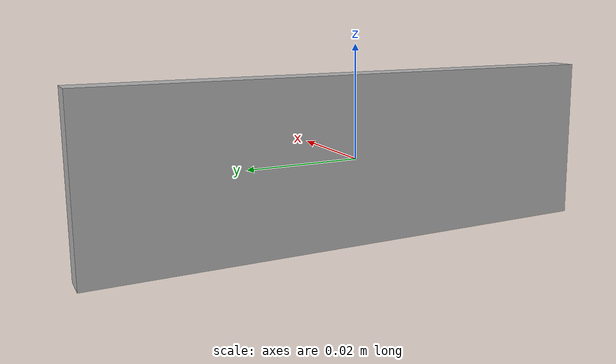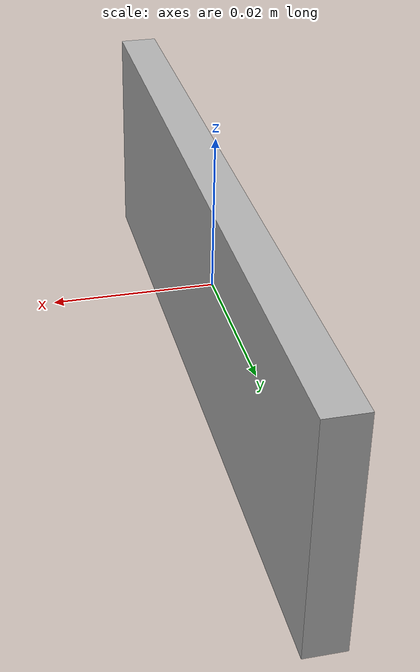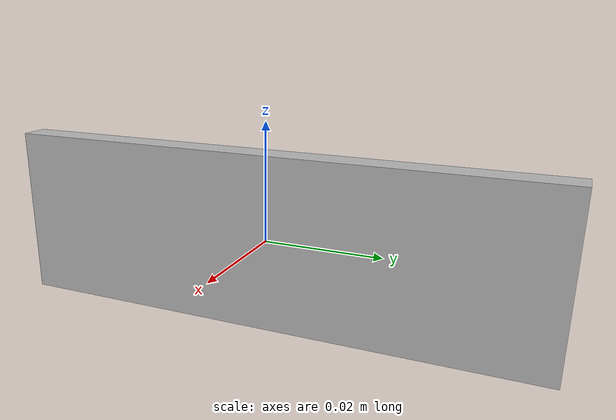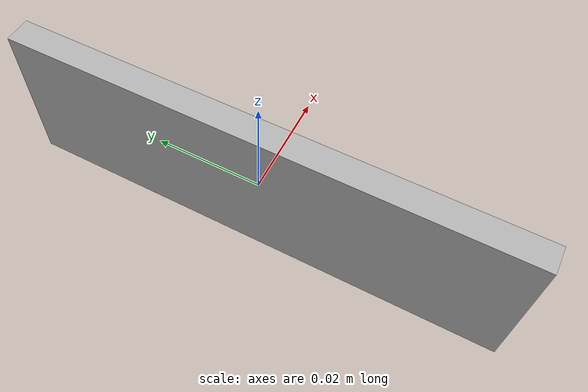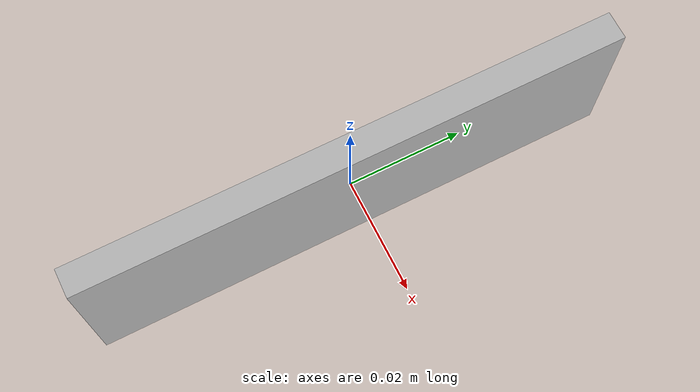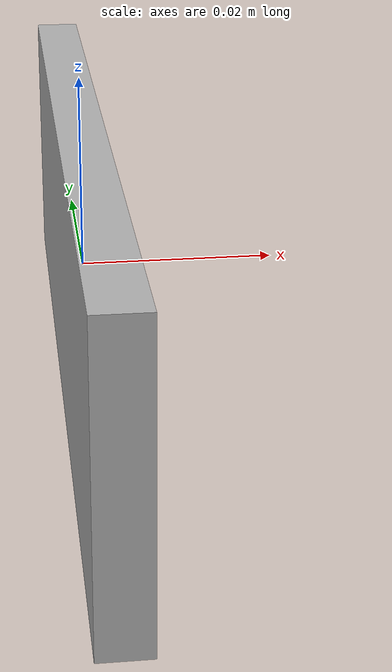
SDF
<?xml version='1.0'?>

<sdf version='1.9'>
  <model name='camera'>
    <link name='link_camera'>
      <inertial>
        <mass>0.0052875</mass>
        <inertia>
          <ixx>4.1e-07</ixx>
          <ixy>0</ixy>
          <ixz>0</ixz>
          <iyy>7.9e-07</iyy>
          <iyz>0</iyz>
          <izz>4.1e-07</izz>
        </inertia>
        <pose>0 0 0 0 0 0</pose>
      </inertial>
      <pose>0 0 0 0 0 0</pose>
      <gravity>1</gravity>
      <self_collide>0</self_collide>
      <kinematic>0</kinematic>
      <enable_wind>0</enable_wind>

      <visual name='visual'>
        <pose>0 0 0 0 0 0</pose>
        <geometry>
          <box><size>0.005 0.095 0.03</size></box>
        </geometry>
        <material>
          <ambient>0.3 0.3 0.3 1</ambient>
          <diffuse>0.7 0.7 0.7 1</diffuse>
          <specular>0.01 0.01 0.01 1</specular>
          <emissive>0 0 0 1</emissive>
        </material>
      </visual>

      <collision name='collision'>
        <pose>0 0 0 0 0 0</pose>
        <geometry>
          <box><size>0.005 0.095 0.03</size></box>
        </geometry>
      </collision>

      <!-- ===== RGB Camera originale (backward compatibility) ===== -->
      <sensor type="camera" name="camera1">
        <always_on>1</always_on>
        <update_rate>30.0</update_rate>
        <camera name="head">
          <horizontal_fov>1.085594795</horizontal_fov>
          <image>
            <width>640</width>
            <height>480</height>
            <format>R8G8B8</format>
          </image>
          <clip><near>0.02</near><far>100</far></clip>
          <noise><type>gaussian</type><mean>0.0</mean><stddev>0.0</stddev></noise>
        </camera>
        <topic>/automobile/image_raw</topic>
      </sensor>

      <!-- ===== OAK-D RGB Camera (centro) ===== -->
      <sensor type="camera" name="oak_rgb">
        <always_on>1</always_on>
        <update_rate>30.0</update_rate>
        <pose>0 0 0 0 0 0</pose>
        <camera name="oak_rgb">
          <horizontal_fov>1.085594795</horizontal_fov>
          <image>
            <width>640</width>
            <height>480</height>
            <format>R8G8B8</format>
          </image>
          <clip><near>0.02</near><far>100</far></clip>
          <noise><type>gaussian</type><mean>0.0</mean><stddev>0.0</stddev></noise>
        </camera>
        <topic>/oak/rgb/image_raw</topic>
      </sensor>

      <!-- ===== OAK-D Depth Camera ===== -->
      <sensor type="depth_camera" name="oak_depth">
        <always_on>1</always_on>
        <update_rate>30.0</update_rate>
        <pose>0 0 0 0 0 0</pose>
        <camera name="oak_depth">
          <horizontal_fov>1.085594795</horizontal_fov>
          <image>
            <width>640</width>
            <height>480</height>
            <format>R_FLOAT32</format>
          </image>
          <clip><near>0.1</near><far>10.0</far></clip>
          <noise><type>gaussian</type><mean>0.0</mean><stddev>0.005</stddev></noise>
        </camera>
        <topic>/oak/stereo/image_raw</topic>
      </sensor>

      <!-- ===== OAK-D Mono LEFT (offset -3.75cm su Y) ===== -->
      <sensor type="camera" name="oak_left">
        <always_on>1</always_on>
        <update_rate>30.0</update_rate>
        <pose>0 0.0375 0 0 0 0</pose>
        <camera name="oak_left">
          <horizontal_fov>1.3962634</horizontal_fov>
          <image>
            <width>640</width>
            <height>400</height>
            <format>R8G8B8</format>
          </image>
          <clip><near>0.02</near><far>100</far></clip>
          <noise><type>gaussian</type><mean>0.0</mean><stddev>0.007</stddev></noise>
        </camera>
        <topic>/oak/left/image_raw</topic>
      </sensor>

      <!-- ===== OAK-D Mono RIGHT (offset +3.75cm su Y) ===== -->
      <sensor type="camera" name="oak_right">
        <always_on>1</always_on>
        <update_rate>30.0</update_rate>
        <pose>0 -0.0375 0 0 0 0</pose>
        <camera name="oak_right">
          <horizontal_fov>1.3962634</horizontal_fov>
          <image>
            <width>640</width>
            <height>400</height>
            <format>R8G8B8</format>
          </image>
          <clip><near>0.02</near><far>100</far></clip>
          <noise><type>gaussian</type><mean>0.0</mean><stddev>0.007</stddev></noise>
        </camera>
        <topic>/oak/right/image_raw</topic>
      </sensor>

      <!-- ===== OAK-D Built-in IMU (BNO085: accel + gyro + orientation) ===== -->
      <sensor name="oak_imu" type="imu">
        <always_on>1</always_on>
        <update_rate>100</update_rate>
        <topic>/oak/imu/data</topic>
        <imu>
          <angular_velocity>
            <x><noise type="gaussian"><mean>0.0</mean><stddev>0.001</stddev></noise></x>
            <y><noise type="gaussian"><mean>0.0</mean><stddev>0.001</stddev></noise></y>
            <z><noise type="gaussian"><mean>0.0</mean><stddev>0.001</stddev></noise></z>
          </angular_velocity>
          <linear_acceleration>
            <x><noise type="gaussian"><mean>0.0</mean><stddev>0.03</stddev></noise></x>
            <y><noise type="gaussian"><mean>0.0</mean><stddev>0.03</stddev></noise></y>
            <z><noise type="gaussian"><mean>0.0</mean><stddev>0.03</stddev></noise></z>
          </linear_acceleration>
        </imu>
      </sensor>

    </link>
  </model>
</sdf>
